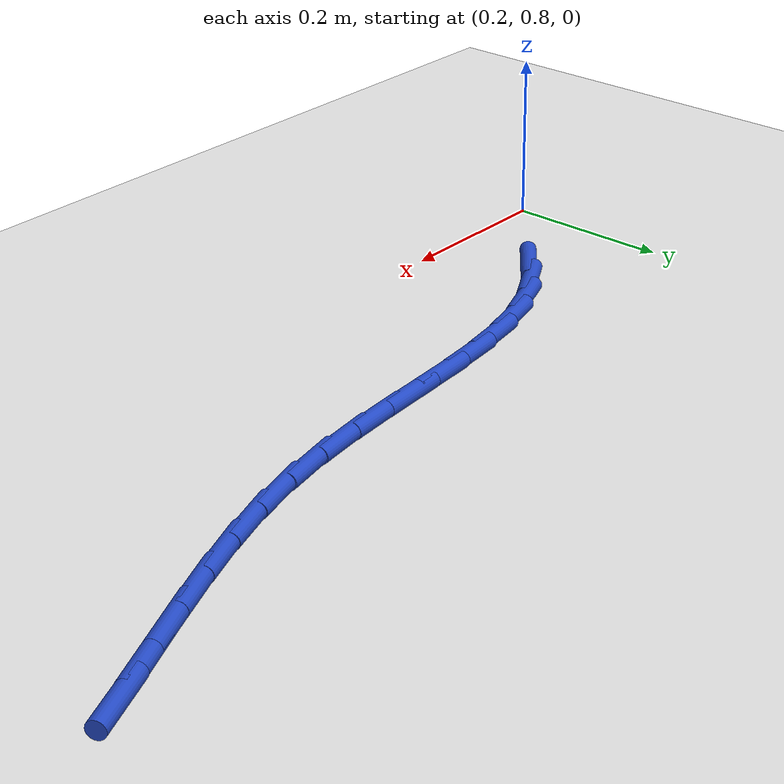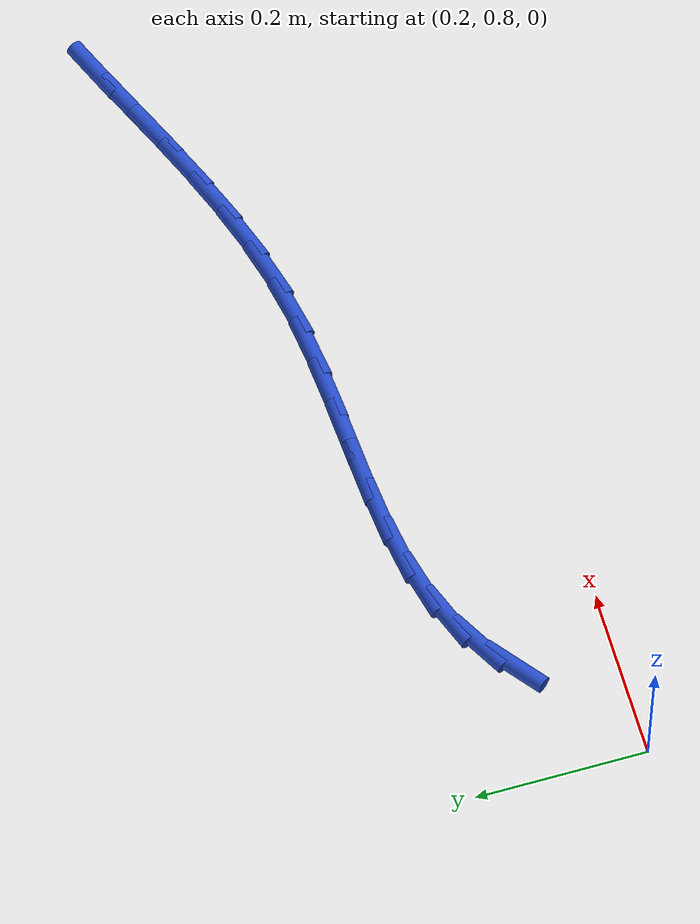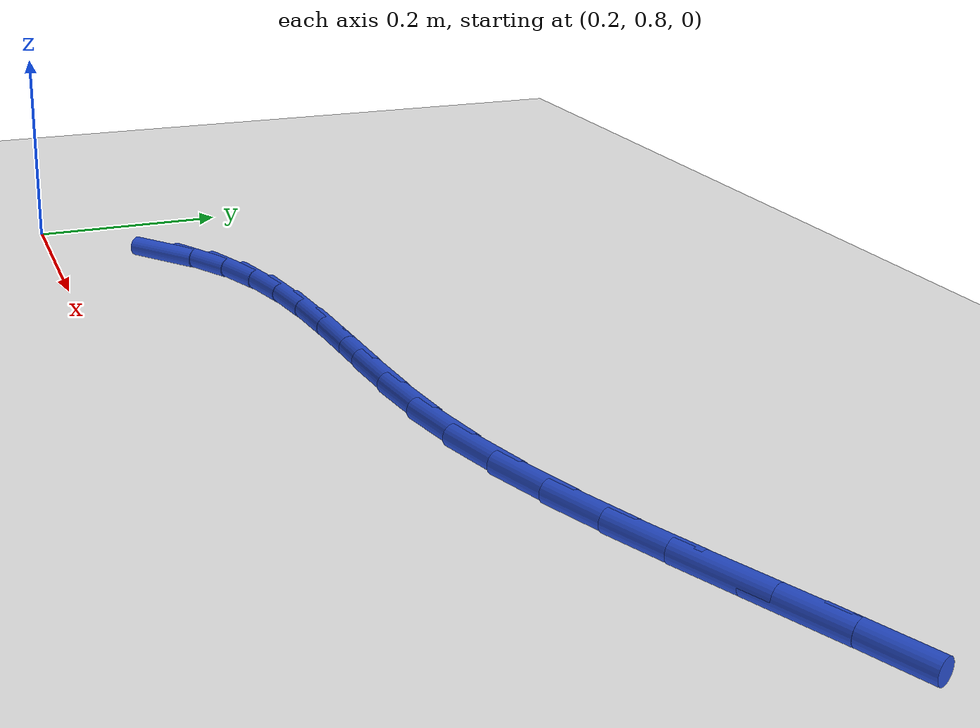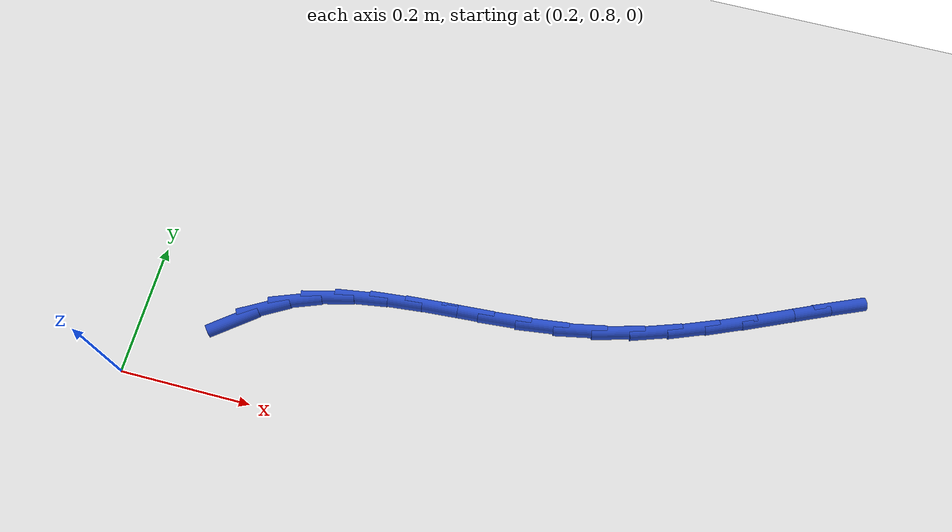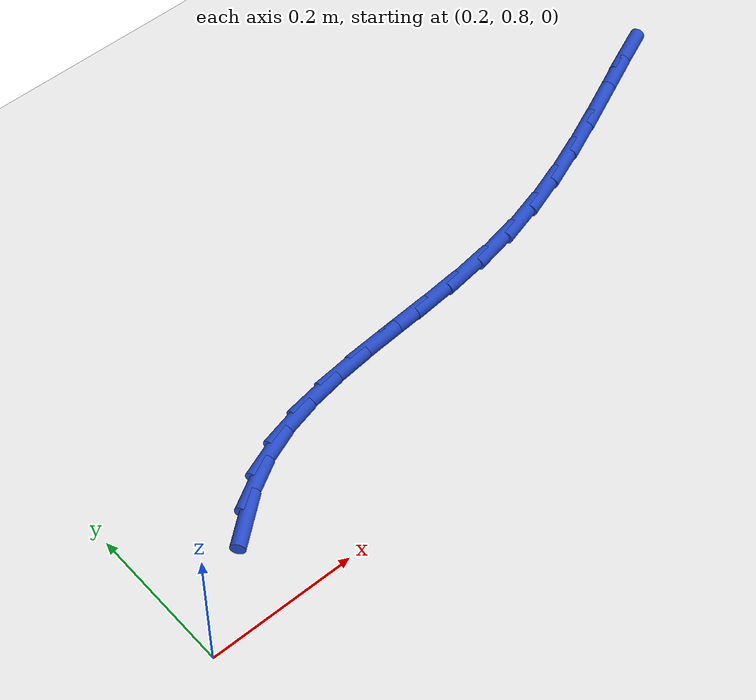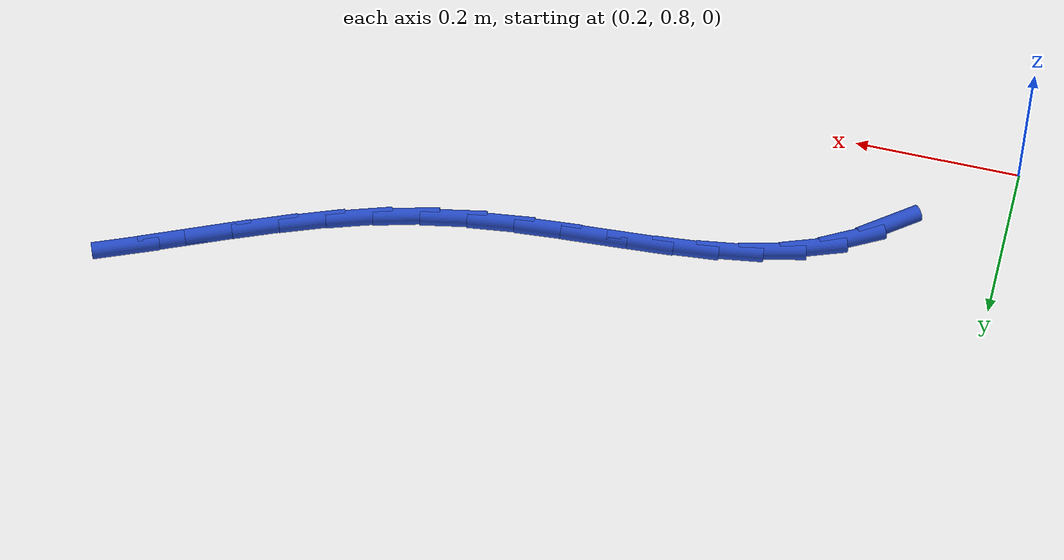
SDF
<sdf version="1.6">
 <world name="default">
  <model name="ground_plane">
   <static>1</static>
   <link name="link">
    <collision name="collision">
     <geometry><plane><normal>0 0 1</normal><size>100 100</size></plane></geometry>
     <surface><friction><ode><mu>100</mu><mu2>50</mu2></ode></friction></surface>
    </collision>
    <visual name="visual">
     <cast_shadows>0</cast_shadows>
     <geometry><plane><normal>0 0 1</normal><size>100 100</size></plane></geometry>
     <material>
      <script><uri>file://media/materials/scripts/gazebo.material</uri><name>Gazebo/WhiteGlow</name></script>
     </material>
    </visual>
   </link>
  </model>
  <model name="line">
   <link name="link_18">
    <pose>0.3374839851659318 0.9137731776080759 0.01 0 1.57 0.6722414994403817</pose>
    <collision name="collision">
     <geometry><cylinder><radius>0.01</radius><length>0.08</length></cylinder></geometry>
    </collision>
    <visual name="visual">
     <material>
      <script><name>Gazebo/Blue</name><uri>file://media/materials/scripts/gazebo.material</uri></script>
     </material>
     <geometry><cylinder><radius>0.01</radius><length>0.08</length></cylinder></geometry>
    </visual>
   </link>
   <link name="link_19">
    <pose>0.37561674537651735 0.944123387908101 0.01 0 1.57 0.5192934539404767</pose>
    <collision name="collision">
     <geometry><cylinder><radius>0.01</radius><length>0.08</length></cylinder></geometry>
    </collision>
    <visual name="visual">
     <material>
      <script><name>Gazebo/Blue</name><uri>file://media/materials/scripts/gazebo.material</uri></script>
     </material>
     <geometry><cylinder><radius>0.01</radius><length>0.08</length></cylinder></geometry>
    </visual>
   </link>
   <link name="link_20">
    <pose>0.4175014910485277 0.9680657153807476 0.01 0 1.57 0.3645970820289732</pose>
    <collision name="collision">
     <geometry><cylinder><radius>0.01</radius><length>0.08</length></cylinder></geometry>
    </collision>
    <visual name="visual">
     <material>
      <script><name>Gazebo/Blue</name><uri>file://media/materials/scripts/gazebo.material</uri></script>
     </material>
     <geometry><cylinder><radius>0.01</radius><length>0.08</length></cylinder></geometry>
    </visual>
   </link>
   <link name="link_21">
    <pose>0.46317555225085694 0.98549769487003 0.01 0 1.57 0.24193190237719747</pose>
    <collision name="collision">
     <geometry><cylinder><radius>0.01</radius><length>0.08</length></cylinder></geometry>
    </collision>
    <visual name="visual">
     <material>
      <script><name>Gazebo/Blue</name><uri>file://media/materials/scripts/gazebo.material</uri></script>
     </material>
     <geometry><cylinder><radius>0.01</radius><length>0.08</length></cylinder></geometry>
    </visual>
   </link>
   <link name="link_22">
    <pose>0.5121138741070269 0.9975739731034287 0.01 0 1.57 0.15432786929534562</pose>
    <collision name="collision">
     <geometry><cylinder><radius>0.01</radius><length>0.08</length></cylinder></geometry>
    </collision>
    <visual name="visual">
     <material>
      <script><name>Gazebo/Blue</name><uri>file://media/materials/scripts/gazebo.material</uri></script>
     </material>
     <geometry><cylinder><radius>0.01</radius><length>0.08</length></cylinder></geometry>
    </visual>
   </link>
   <link name="link_23">
    <pose>0.5637228146156641 1.0056025111715954 0.01 0 1.57 0.09819612700172387</pose>
    <collision name="collision">
     <geometry><cylinder><radius>0.01</radius><length>0.08</length></cylinder></geometry>
    </collision>
    <visual name="visual">
     <material>
      <script><name>Gazebo/Blue</name><uri>file://media/materials/scripts/gazebo.material</uri></script>
     </material>
     <geometry><cylinder><radius>0.01</radius><length>0.08</length></cylinder></geometry>
    </visual>
   </link>
   <link name="link_24">
    <pose>0.6174087317753952 1.010891270165183 0.01 0 1.57 0.06979749722525311</pose>
    <collision name="collision">
     <geometry><cylinder><radius>0.01</radius><length>0.08</length></cylinder></geometry>
    </collision>
    <visual name="visual">
     <material>
      <script><name>Gazebo/Blue</name><uri>file://media/materials/scripts/gazebo.material</uri></script>
     </material>
     <geometry><cylinder><radius>0.01</radius><length>0.08</length></cylinder></geometry>
    </visual>
   </link>
   <link name="link_25">
    <pose>0.6725779835848471 1.014748211174844 0.01 0 1.57 0.0664939494357623</pose>
    <collision name="collision">
     <geometry><cylinder><radius>0.01</radius><length>0.08</length></cylinder></geometry>
    </collision>
    <visual name="visual">
     <material>
      <script><name>Gazebo/Blue</name><uri>file://media/materials/scripts/gazebo.material</uri></script>
     </material>
     <geometry><cylinder><radius>0.01</radius><length>0.08</length></cylinder></geometry>
    </visual>
   </link>
   <link name="link_26">
    <pose>0.7286369280426461 1.0184812952912305 0.01 0 1.57 0.08703339320356059</pose>
    <collision name="collision">
     <geometry><cylinder><radius>0.01</radius><length>0.08</length></cylinder></geometry>
    </collision>
    <visual name="visual">
     <material>
      <script><name>Gazebo/Blue</name><uri>file://media/materials/scripts/gazebo.material</uri></script>
     </material>
     <geometry><cylinder><radius>0.01</radius><length>0.08</length></cylinder></geometry>
    </visual>
   </link>
   <link name="link_27">
    <pose>0.7849919231474187 1.0233984836049954 0.01 0 1.57 0.1314109148363183</pose>
    <collision name="collision">
     <geometry><cylinder><radius>0.01</radius><length>0.08</length></cylinder></geometry>
    </collision>
    <visual name="visual">
     <material>
      <script><name>Gazebo/Blue</name><uri>file://media/materials/scripts/gazebo.material</uri></script>
     </material>
     <geometry><cylinder><radius>0.01</radius><length>0.08</length></cylinder></geometry>
    </visual>
   </link>
   <link name="link_28">
    <pose>0.8410493268977924 1.030807737206791 0.01 0 1.57 0.19980950240734566</pose>
    <collision name="collision">
     <geometry><cylinder><radius>0.01</radius><length>0.08</length></cylinder></geometry>
    </collision>
    <visual name="visual">
     <material>
      <script><name>Gazebo/Blue</name><uri>file://media/materials/scripts/gazebo.material</uri></script>
     </material>
     <geometry><cylinder><radius>0.01</radius><length>0.08</length></cylinder></geometry>
    </visual>
   </link>
   <link name="link_29">
    <pose>0.8962270902097718 1.0419818808376375 0.01 0 1.57 0.274602865221537</pose>
    <collision name="collision">
     <geometry><cylinder><radius>0.01</radius><length>0.08</length></cylinder></geometry>
    </collision>
    <visual name="visual">
     <material>
      <script><name>Gazebo/Blue</name><uri>file://media/materials/scripts/gazebo.material</uri></script>
     </material>
     <geometry><cylinder><radius>0.01</radius><length>0.08</length></cylinder></geometry>
    </visual>
   </link>
   <link name="link_30">
    <pose>0.9502688845117531 1.057206530459888 0.01 0 1.57 0.3351330704735034</pose>
    <collision name="collision">
     <geometry><cylinder><radius>0.01</radius><length>0.08</length></cylinder></geometry>
    </collision>
    <visual name="visual">
     <material>
      <script><name>Gazebo/Blue</name><uri>file://media/materials/scripts/gazebo.material</uri></script>
     </material>
     <geometry><cylinder><radius>0.01</radius><length>0.08</length></cylinder></geometry>
    </visual>
   </link>
   <link name="link_31">
    <pose>1.0032807583678407 1.075668992669595 0.01 0 1.57 0.38029731890670976</pose>
    <collision name="collision">
     <geometry><cylinder><radius>0.01</radius><length>0.08</length></cylinder></geometry>
    </collision>
    <visual name="visual">
     <material>
      <script><name>Gazebo/Blue</name><uri>file://media/materials/scripts/gazebo.material</uri></script>
     </material>
     <geometry><cylinder><radius>0.01</radius><length>0.08</length></cylinder></geometry>
    </visual>
   </link>
   <link name="link_32">
    <pose>1.0553877107324854 1.096499138344154 0.01 0 1.57 0.410317397783642</pose>
    <collision name="collision">
     <geometry><cylinder><radius>0.01</radius><length>0.08</length></cylinder></geometry>
    </collision>
    <visual name="visual">
     <material>
      <script><name>Gazebo/Blue</name><uri>file://media/materials/scripts/gazebo.material</uri></script>
     </material>
     <geometry><cylinder><radius>0.01</radius><length>0.08</length></cylinder></geometry>
    </visual>
   </link>
   <link name="link_33">
    <pose>1.1067147405601376 1.1188268383609614 0.01 0 1.57 0.4253567510582967</pose>
    <collision name="collision">
     <geometry><cylinder><radius>0.01</radius><length>0.08</length></cylinder></geometry>
    </collision>
    <visual name="visual">
     <material>
      <script><name>Gazebo/Blue</name><uri>file://media/materials/scripts/gazebo.material</uri></script>
     </material>
     <geometry><cylinder><radius>0.01</radius><length>0.08</length></cylinder></geometry>
    </visual>
   </link>
   <link name="link_34">
    <pose>1.1573868468052493 1.1417819635974125 0.01 0 1.57 0.42531304627636213</pose>
    <collision name="collision">
     <geometry><cylinder><radius>0.01</radius><length>0.08</length></cylinder></geometry>
    </collision>
    <visual name="visual">
     <material>
      <script><name>Gazebo/Blue</name><uri>file://media/materials/scripts/gazebo.material</uri></script>
     </material>
     <geometry><cylinder><radius>0.01</radius><length>0.08</length></cylinder></geometry>
    </visual>
   </link>
   <link name="link_35">
    <pose>1.207529028422271 1.1644943849309033 0.01 0 1.57 0.4096993636816247</pose>
    <collision name="collision">
     <geometry><cylinder><radius>0.01</radius><length>0.08</length></cylinder></geometry>
    </collision>
    <visual name="visual">
     <material>
      <script><name>Gazebo/Blue</name><uri>file://media/materials/scripts/gazebo.material</uri></script>
     </material>
     <geometry><cylinder><radius>0.01</radius><length>0.08</length></cylinder></geometry>
    </visual>
   </link>
  </model>
 </world>
</sdf>
